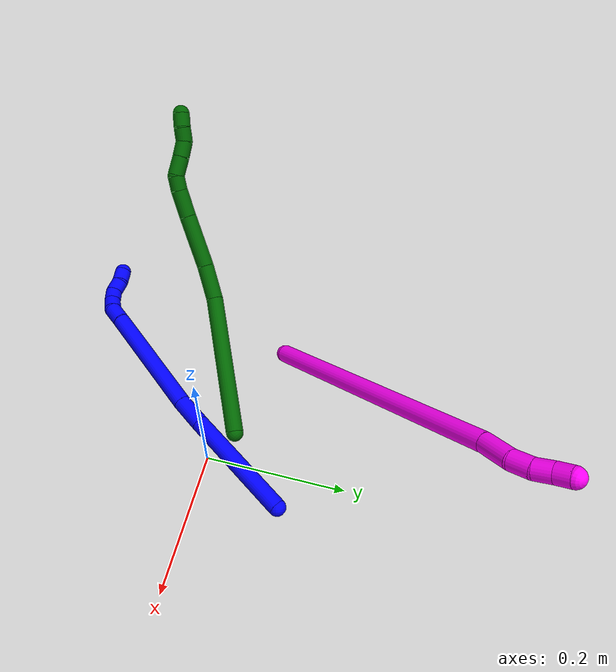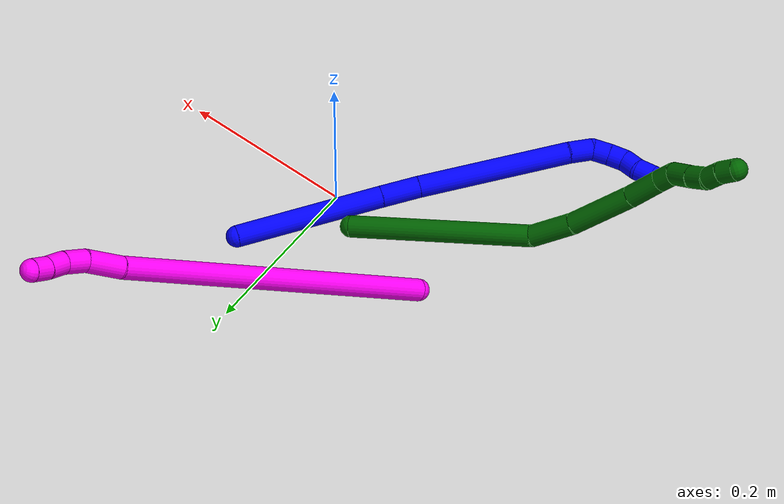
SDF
<sdf version="1.7">
 <world name="default">
  <model name="photoneo_s_sensor">
   <static>1</static>
   <pose>0 0 2 1.57079 1.57079 3.14159</pose>
   <link name="link">
    <inertial><mass>0.1</mass></inertial>
    <sensor name="sensor" type="depth">
     <update_rate>30</update_rate>
     <camera>
      <horizontal_fov>1.22</horizontal_fov>
      <image><width>1920</width><height>1200</height><format>B8G8R8</format></image>
      <clip><near>0.1</near><far>4</far></clip>
      <depth_camera><output>points</output></depth_camera>
     </camera>
     <plugin name="camera_plugin" filename="libgazebo_ros_depth_camera.so">
      <baseline>0.2</baseline>
      <alwaysOn>1</alwaysOn>
      <updateRate>0.0</updateRate>
      <cameraName>camera_ir</cameraName>
      <imageTopicName>/camera/color/image_raw</imageTopicName>
      <cameraInfoTopicName>/camera/color/camera_info</cameraInfoTopicName>
      <depthImageTopicName>/camera/depth/image_raw</depthImageTopicName>
      <depthImageCameraInfoTopicName>/camera/depth/camera_info</depthImageCameraInfoTopicName>
      <pointCloudTopicName>/camera/depth/points</pointCloudTopicName>
      <frameName>fr_optical</frameName>
      <pointCloudCutoff>0.1</pointCloudCutoff>
      <pointCloudCutoffMax>2.0</pointCloudCutoffMax>
      <distortionK1>0</distortionK1>
      <distortionK2>0</distortionK2>
      <distortionK3>0</distortionK3>
      <distortionT1>0</distortionT1>
      <distortionT2>0</distortionT2>
      <CxPrime>0</CxPrime>
      <Cx>0</Cx>
      <Cy>0</Cy>
      <focalLength>0</focalLength>
      <hackBaseline>0</hackBaseline>
     </plugin>
    </sensor>
   </link>
  </model>
  <model name="bin">
   <static>1</static>
   <link name="bottom">
    <collision name="collision-bottom">
     <pose>0 0 -0.01 0 -0 0</pose>
     <geometry><box><size>0.8 0.6 0.02</size></box></geometry>
     <surface>
      <friction><ode><mu>100</mu><mu2>100</mu2></ode></friction>
      <contact><collide_bitmask>65535</collide_bitmask></contact>
     </surface>
    </collision>
   </link>
   <link name="west_wall">
    <collision name="collision-west_wall">
     <pose>-0.41 0 0.1 0 -0 0</pose>
     <geometry><box><size>0.02 0.6 0.2</size></box></geometry>
     <surface>
      <friction><ode><mu>100</mu><mu2>100</mu2></ode></friction>
      <contact><collide_bitmask>65535</collide_bitmask></contact>
     </surface>
    </collision>
   </link>
   <link name="east_wall">
    <collision name="collision-east_wall">
     <pose>0.41 0 0.1 0 -0 0</pose>
     <geometry><box><size>0.02 0.6 0.2</size></box></geometry>
     <surface>
      <friction><ode><mu>100</mu><mu2>100</mu2></ode></friction>
      <contact><collide_bitmask>65535</collide_bitmask></contact>
     </surface>
    </collision>
   </link>
   <link name="south_wall">
    <collision name="collision-south_wall">
     <pose>0 -0.31 0.1 0 -0 0</pose>
     <geometry><box><size>0.8 0.02 0.2</size></box></geometry>
     <surface>
      <friction><ode><mu>100</mu><mu2>100</mu2></ode></friction>
      <contact><collide_bitmask>65535</collide_bitmask></contact>
     </surface>
    </collision>
   </link>
   <link name="north_wall">
    <collision name="collision-north_wall">
     <pose>0 0.31 0.1 0 -0 0</pose>
     <geometry><box><size>0.8 0.02 0.2</size></box></geometry>
     <surface>
      <friction><ode><mu>100</mu><mu2>100</mu2></ode></friction>
      <contact><collide_bitmask>65535</collide_bitmask></contact>
     </surface>
    </collision>
   </link>
  </model>
  <model name="1">
   <static>0</static>
   <link name="1">
    <collision name="collision-cylinder-e_1_1_4">
     <pose>-0.033363 -0.058896 0.0524 0.843702 -0.400361 -0.181618</pose>
     <geometry><cylinder><radius>0.0125</radius><length>0.171202</length></cylinder></geometry>
     <surface>
      <friction><ode><mu>1.16</mu><mu2>1.16</mu2><slip1>0</slip1><slip2>0</slip2></ode></friction>
      <contact><ode><kp>1e+06</kp><kd>1</kd><max_vel>0</max_vel><min_depth>0.001</min_depth></ode></contact>
     </surface>
    </collision>
    <visual name="visual-cylinder-e_1_1_4">
     <pose>-0.033363 -0.058896 0.0524 0.843702 -0.400361 -0.181618</pose>
     <geometry><cylinder><radius>0.0125</radius><length>0.171202</length></cylinder></geometry>
     <material><ambient>0 0 1 1</ambient></material>
    </visual>
    <collision name="collision-cylinder-e_2_4_5">
     <pose>-0.075448 -0.132735 0.119032 0.809714 -0.399863 -0.173239</pose>
     <geometry><cylinder><radius>0.0125</radius><length>0.044808</length></cylinder></geometry>
     <surface>
      <friction><ode><mu>1.16</mu><mu2>1.16</mu2><slip1>0</slip1><slip2>0</slip2></ode></friction>
      <contact><ode><kp>1e+06</kp><kd>1</kd><max_vel>0</max_vel><min_depth>0.001</min_depth></ode></contact>
     </surface>
    </collision>
    <visual name="visual-cylinder-e_2_4_5">
     <pose>-0.075448 -0.132735 0.119032 0.809714 -0.399863 -0.173239</pose>
     <geometry><cylinder><radius>0.0125</radius><length>0.044808</length></cylinder></geometry>
     <material><ambient>0 0 1 1</ambient></material>
    </visual>
    <collision name="collision-cylinder-e_3_5_6">
     <pose>-0.118983 -0.202096 0.193052 0.738432 -0.40662 -0.159214</pose>
     <geometry><cylinder><radius>0.0125</radius><length>0.176043</length></cylinder></geometry>
     <surface>
      <friction><ode><mu>1.16</mu><mu2>1.16</mu2><slip1>0</slip1><slip2>0</slip2></ode></friction>
      <contact><ode><kp>1e+06</kp><kd>1</kd><max_vel>0</max_vel><min_depth>0.001</min_depth></ode></contact>
     </surface>
    </collision>
    <visual name="visual-cylinder-e_3_5_6">
     <pose>-0.118983 -0.202096 0.193052 0.738432 -0.40662 -0.159214</pose>
     <geometry><cylinder><radius>0.0125</radius><length>0.176043</length></cylinder></geometry>
     <material><ambient>0 0 1 1</ambient></material>
    </visual>
    <collision name="collision-cylinder-e_4_6_7">
     <pose>-0.160562 -0.265193 0.261255 0.800693 -0.510248 -0.219858</pose>
     <geometry><cylinder><radius>0.0125</radius><length>0.027708</length></cylinder></geometry>
     <surface>
      <friction><ode><mu>1.16</mu><mu2>1.16</mu2><slip1>0</slip1><slip2>0</slip2></ode></friction>
      <contact><ode><kp>1e+06</kp><kd>1</kd><max_vel>0</max_vel><min_depth>0.001</min_depth></ode></contact>
     </surface>
    </collision>
    <visual name="visual-cylinder-e_4_6_7">
     <pose>-0.160562 -0.265193 0.261255 0.800693 -0.510248 -0.219858</pose>
     <geometry><cylinder><radius>0.0125</radius><length>0.027708</length></cylinder></geometry>
     <material><ambient>0 0 1 1</ambient></material>
    </visual>
    <collision name="collision-cylinder-e_5_7_8">
     <pose>-0.174936 -0.276407 0.275809 0.391871 -0.853148 -0.179926</pose>
     <geometry><cylinder><radius>0.0125</radius><length>0.020198</length></cylinder></geometry>
     <surface>
      <friction><ode><mu>1.16</mu><mu2>1.16</mu2><slip1>0</slip1><slip2>0</slip2></ode></friction>
      <contact><ode><kp>1e+06</kp><kd>1</kd><max_vel>0</max_vel><min_depth>0.001</min_depth></ode></contact>
     </surface>
    </collision>
    <visual name="visual-cylinder-e_5_7_8">
     <pose>-0.174936 -0.276407 0.275809 0.391871 -0.853148 -0.179926</pose>
     <geometry><cylinder><radius>0.0125</radius><length>0.020198</length></cylinder></geometry>
     <material><ambient>0 0 1 1</ambient></material>
    </visual>
    <collision name="collision-cylinder-e_6_8_9">
     <pose>-0.18952 -0.279675 0.289093 0.101917 -0.770704 -0.041371</pose>
     <geometry><cylinder><radius>0.0125</radius><length>0.020026</length></cylinder></geometry>
     <surface>
      <friction><ode><mu>1.16</mu><mu2>1.16</mu2><slip1>0</slip1><slip2>0</slip2></ode></friction>
      <contact><ode><kp>1e+06</kp><kd>1</kd><max_vel>0</max_vel><min_depth>0.001</min_depth></ode></contact>
     </surface>
    </collision>
    <visual name="visual-cylinder-e_6_8_9">
     <pose>-0.18952 -0.279675 0.289093 0.101917 -0.770704 -0.041371</pose>
     <geometry><cylinder><radius>0.0125</radius><length>0.020026</length></cylinder></geometry>
     <material><ambient>0 0 1 1</ambient></material>
    </visual>
    <collision name="collision-cylinder-e_7_9_10">
     <pose>-0.201547 -0.276519 0.303953 -0.466682 -0.529281 0.128638</pose>
     <geometry><cylinder><radius>0.0125</radius><length>0.020013</length></cylinder></geometry>
     <surface>
      <friction><ode><mu>1.16</mu><mu2>1.16</mu2><slip1>0</slip1><slip2>0</slip2></ode></friction>
      <contact><ode><kp>1e+06</kp><kd>1</kd><max_vel>0</max_vel><min_depth>0.001</min_depth></ode></contact>
     </surface>
    </collision>
    <visual name="visual-cylinder-e_7_9_10">
     <pose>-0.201547 -0.276519 0.303953 -0.466682 -0.529281 0.128638</pose>
     <geometry><cylinder><radius>0.0125</radius><length>0.020013</length></cylinder></geometry>
     <material><ambient>0 0 1 1</ambient></material>
    </visual>
    <collision name="collision-cylinder-e_8_10_2">
     <pose>-0.212789 -0.271727 0.319471 -0.11559 -0.667277 0.040102</pose>
     <geometry><cylinder><radius>0.0125</radius><length>0.020003</length></cylinder></geometry>
     <surface>
      <friction><ode><mu>1.16</mu><mu2>1.16</mu2><slip1>0</slip1><slip2>0</slip2></ode></friction>
      <contact><ode><kp>1e+06</kp><kd>1</kd><max_vel>0</max_vel><min_depth>0.001</min_depth></ode></contact>
     </surface>
    </collision>
    <visual name="visual-cylinder-e_8_10_2">
     <pose>-0.212789 -0.271727 0.319471 -0.11559 -0.667277 0.040102</pose>
     <geometry><cylinder><radius>0.0125</radius><length>0.020003</length></cylinder></geometry>
     <material><ambient>0 0 1 1</ambient></material>
    </visual>
    <collision name="collision-sphere-2">
     <pose>-0.218978 -0.270821 0.327274 0 -0 0</pose>
     <geometry><sphere><radius>0.0125</radius></sphere></geometry>
     <surface>
      <friction><ode><mu>1.16</mu><mu2>1.16</mu2><slip1>0</slip1><slip2>0</slip2></ode></friction>
      <contact><ode><kp>1e+06</kp><kd>1</kd><max_vel>0</max_vel><min_depth>0.001</min_depth></ode></contact>
     </surface>
    </collision>
    <visual name="visual-sphere-2">
     <pose>-0.218978 -0.270821 0.327274 0 -0 0</pose>
     <geometry><sphere><radius>0.0125</radius></sphere></geometry>
     <material><ambient>0 0 1 1</ambient></material>
    </visual>
    <collision name="collision-sphere-10">
     <pose>-0.2066 -0.272633 0.311667 0 -0 0</pose>
     <geometry><sphere><radius>0.0125</radius></sphere></geometry>
     <surface>
      <friction><ode><mu>1.16</mu><mu2>1.16</mu2><slip1>0</slip1><slip2>0</slip2></ode></friction>
      <contact><ode><kp>1e+06</kp><kd>1</kd><max_vel>0</max_vel><min_depth>0.001</min_depth></ode></contact>
     </surface>
    </collision>
    <visual name="visual-sphere-10">
     <pose>-0.2066 -0.272633 0.311667 0 -0 0</pose>
     <geometry><sphere><radius>0.0125</radius></sphere></geometry>
     <material><ambient>0 0 1 1</ambient></material>
    </visual>
    <collision name="collision-sphere-9">
     <pose>-0.196495 -0.280405 0.29624 0 -0 0</pose>
     <geometry><sphere><radius>0.0125</radius></sphere></geometry>
     <surface>
      <friction><ode><mu>1.16</mu><mu2>1.16</mu2><slip1>0</slip1><slip2>0</slip2></ode></friction>
      <contact><ode><kp>1e+06</kp><kd>1</kd><max_vel>0</max_vel><min_depth>0.001</min_depth></ode></contact>
     </surface>
    </collision>
    <visual name="visual-sphere-9">
     <pose>-0.196495 -0.280405 0.29624 0 -0 0</pose>
     <geometry><sphere><radius>0.0125</radius></sphere></geometry>
     <material><ambient>0 0 1 1</ambient></material>
    </visual>
    <collision name="collision-sphere-4">
     <pose>-0.066726 -0.117792 0.104799 0 -0 0</pose>
     <geometry><sphere><radius>0.0125</radius></sphere></geometry>
     <surface>
      <friction><ode><mu>1.16</mu><mu2>1.16</mu2><slip1>0</slip1><slip2>0</slip2></ode></friction>
      <contact><ode><kp>1e+06</kp><kd>1</kd><max_vel>0</max_vel><min_depth>0.001</min_depth></ode></contact>
     </surface>
    </collision>
    <visual name="visual-sphere-4">
     <pose>-0.066726 -0.117792 0.104799 0 -0 0</pose>
     <geometry><sphere><radius>0.0125</radius></sphere></geometry>
     <material><ambient>0 0 1 1</ambient></material>
    </visual>
    <collision name="collision-sphere-1">
     <geometry><sphere><radius>0.0125</radius></sphere></geometry>
     <surface>
      <friction><ode><mu>1.16</mu><mu2>1.16</mu2><slip1>0</slip1><slip2>0</slip2></ode></friction>
      <contact><ode><kp>1e+06</kp><kd>1</kd><max_vel>0</max_vel><min_depth>0.001</min_depth></ode></contact>
     </surface>
    </collision>
    <visual name="visual-sphere-1">
     <geometry><sphere><radius>0.0125</radius></sphere></geometry>
     <material><ambient>0 0 1 1</ambient></material>
    </visual>
    <collision name="collision-sphere-8">
     <pose>-0.182544 -0.278944 0.281947 0 -0 0</pose>
     <geometry><sphere><radius>0.0125</radius></sphere></geometry>
     <surface>
      <friction><ode><mu>1.16</mu><mu2>1.16</mu2><slip1>0</slip1><slip2>0</slip2></ode></friction>
      <contact><ode><kp>1e+06</kp><kd>1</kd><max_vel>0</max_vel><min_depth>0.001</min_depth></ode></contact>
     </surface>
    </collision>
    <visual name="visual-sphere-8">
     <pose>-0.182544 -0.278944 0.281947 0 -0 0</pose>
     <geometry><sphere><radius>0.0125</radius></sphere></geometry>
     <material><ambient>0 0 1 1</ambient></material>
    </visual>
    <collision name="collision-sphere-5">
     <pose>-0.08417 -0.147678 0.133266 0 -0 0</pose>
     <geometry><sphere><radius>0.0125</radius></sphere></geometry>
     <surface>
      <friction><ode><mu>1.16</mu><mu2>1.16</mu2><slip1>0</slip1><slip2>0</slip2></ode></friction>
      <contact><ode><kp>1e+06</kp><kd>1</kd><max_vel>0</max_vel><min_depth>0.001</min_depth></ode></contact>
     </surface>
    </collision>
    <visual name="visual-sphere-5">
     <pose>-0.08417 -0.147678 0.133266 0 -0 0</pose>
     <geometry><sphere><radius>0.0125</radius></sphere></geometry>
     <material><ambient>0 0 1 1</ambient></material>
    </visual>
    <collision name="collision-sphere-6">
     <pose>-0.153796 -0.256515 0.252838 0 -0 0</pose>
     <geometry><sphere><radius>0.0125</radius></sphere></geometry>
     <surface>
      <friction><ode><mu>1.16</mu><mu2>1.16</mu2><slip1>0</slip1><slip2>0</slip2></ode></friction>
      <contact><ode><kp>1e+06</kp><kd>1</kd><max_vel>0</max_vel><min_depth>0.001</min_depth></ode></contact>
     </surface>
    </collision>
    <visual name="visual-sphere-6">
     <pose>-0.153796 -0.256515 0.252838 0 -0 0</pose>
     <geometry><sphere><radius>0.0125</radius></sphere></geometry>
     <material><ambient>0 0 1 1</ambient></material>
    </visual>
    <collision name="collision-sphere-7">
     <pose>-0.167328 -0.273871 0.269672 0 -0 0</pose>
     <geometry><sphere><radius>0.0125</radius></sphere></geometry>
     <surface>
      <friction><ode><mu>1.16</mu><mu2>1.16</mu2><slip1>0</slip1><slip2>0</slip2></ode></friction>
      <contact><ode><kp>1e+06</kp><kd>1</kd><max_vel>0</max_vel><min_depth>0.001</min_depth></ode></contact>
     </surface>
    </collision>
    <visual name="visual-sphere-7">
     <pose>-0.167328 -0.273871 0.269672 0 -0 0</pose>
     <geometry><sphere><radius>0.0125</radius></sphere></geometry>
     <material><ambient>0 0 1 1</ambient></material>
    </visual>
    <inertial>
     <pose>-0.100212 -0.162218 0.158724 0 -0 0</pose>
     <mass>0.5</mass>
     <inertia>
      <ixx>0.000662</ixx>
      <ixy>0</ixy>
      <ixz>0</ixz>
      <iyy>0.00051</iyy>
      <iyz>0</iyz>
      <izz>0.000968</izz>
     </inertia>
    </inertial>
   </link>
   <pose>0.050886 0.116939 0.011491 0.2063 -0.865923 0.051608</pose>
  </model>
  <model name="6">
   <static>0</static>
   <link name="6">
    <collision name="collision-cylinder-e_1_1_4">
     <pose>-0.042106 -0.030864 0.092334 0.322592 -0.408204 -0.067331</pose>
     <geometry><cylinder><radius>0.0125</radius><length>0.212142</length></cylinder></geometry>
     <surface>
      <friction><ode><mu>1.16</mu><mu2>1.16</mu2><slip1>0</slip1><slip2>0</slip2></ode></friction>
      <contact><ode><kp>1e+06</kp><kd>1</kd><max_vel>0</max_vel><min_depth>0.001</min_depth></ode></contact>
     </surface>
    </collision>
    <visual name="visual-cylinder-e_1_1_4">
     <pose>-0.042106 -0.030864 0.092334 0.322592 -0.408204 -0.067331</pose>
     <geometry><cylinder><radius>0.0125</radius><length>0.212142</length></cylinder></geometry>
     <material><ambient>0 0.392157 0.003922 1</ambient></material>
    </visual>
    <collision name="collision-cylinder-e_2_4_5">
     <pose>-0.097926 -0.060178 0.207192 -0.068711 -0.545834 0.019239</pose>
     <geometry><cylinder><radius>0.0125</radius><length>0.052832</length></cylinder></geometry>
     <surface>
      <friction><ode><mu>1.16</mu><mu2>1.16</mu2><slip1>0</slip1><slip2>0</slip2></ode></friction>
      <contact><ode><kp>1e+06</kp><kd>1</kd><max_vel>0</max_vel><min_depth>0.001</min_depth></ode></contact>
     </surface>
    </collision>
    <visual name="visual-cylinder-e_2_4_5">
     <pose>-0.097926 -0.060178 0.207192 -0.068711 -0.545834 0.019239</pose>
     <geometry><cylinder><radius>0.0125</radius><length>0.052832</length></cylinder></geometry>
     <material><ambient>0 0.392157 0.003922 1</ambient></material>
    </visual>
    <collision name="collision-cylinder-e_3_5_6">
     <pose>-0.132328 -0.051226 0.262527 -0.221887 -0.551456 0.063017</pose>
     <geometry><cylinder><radius>0.0125</radius><length>0.078978</length></cylinder></geometry>
     <surface>
      <friction><ode><mu>1.16</mu><mu2>1.16</mu2><slip1>0</slip1><slip2>0</slip2></ode></friction>
      <contact><ode><kp>1e+06</kp><kd>1</kd><max_vel>0</max_vel><min_depth>0.001</min_depth></ode></contact>
     </surface>
    </collision>
    <visual name="visual-cylinder-e_3_5_6">
     <pose>-0.132328 -0.051226 0.262527 -0.221887 -0.551456 0.063017</pose>
     <geometry><cylinder><radius>0.0125</radius><length>0.078978</length></cylinder></geometry>
     <material><ambient>0 0.392157 0.003922 1</ambient></material>
    </visual>
    <collision name="collision-cylinder-e_4_6_7">
     <pose>-0.164824 -0.038778 0.311438 -0.303739 -0.610534 0.096381</pose>
     <geometry><cylinder><radius>0.0125</radius><length>0.041186</length></cylinder></geometry>
     <surface>
      <friction><ode><mu>1.16</mu><mu2>1.16</mu2><slip1>0</slip1><slip2>0</slip2></ode></friction>
      <contact><ode><kp>1e+06</kp><kd>1</kd><max_vel>0</max_vel><min_depth>0.001</min_depth></ode></contact>
     </surface>
    </collision>
    <visual name="visual-cylinder-e_4_6_7">
     <pose>-0.164824 -0.038778 0.311438 -0.303739 -0.610534 0.096381</pose>
     <geometry><cylinder><radius>0.0125</radius><length>0.041186</length></cylinder></geometry>
     <material><ambient>0 0.392157 0.003922 1</ambient></material>
    </visual>
    <collision name="collision-cylinder-e_5_7_8">
     <pose>-0.18383 -0.031303 0.335277 -0.304024 -0.725996 0.116244</pose>
     <geometry><cylinder><radius>0.0125</radius><length>0.021692</length></cylinder></geometry>
     <surface>
      <friction><ode><mu>1.16</mu><mu2>1.16</mu2><slip1>0</slip1><slip2>0</slip2></ode></friction>
      <contact><ode><kp>1e+06</kp><kd>1</kd><max_vel>0</max_vel><min_depth>0.001</min_depth></ode></contact>
     </surface>
    </collision>
    <visual name="visual-cylinder-e_5_7_8">
     <pose>-0.18383 -0.031303 0.335277 -0.304024 -0.725996 0.116244</pose>
     <geometry><cylinder><radius>0.0125</radius><length>0.021692</length></cylinder></geometry>
     <material><ambient>0 0.392157 0.003922 1</ambient></material>
    </visual>
    <collision name="collision-cylinder-e_6_8_9">
     <pose>-0.202915 -0.031856 0.35032 0.387534 -0.984785 -0.209768</pose>
     <geometry><cylinder><radius>0.0125</radius><length>0.028528</length></cylinder></geometry>
     <surface>
      <friction><ode><mu>1.16</mu><mu2>1.16</mu2><slip1>0</slip1><slip2>0</slip2></ode></friction>
      <contact><ode><kp>1e+06</kp><kd>1</kd><max_vel>0</max_vel><min_depth>0.001</min_depth></ode></contact>
     </surface>
    </collision>
    <visual name="visual-cylinder-e_6_8_9">
     <pose>-0.202915 -0.031856 0.35032 0.387534 -0.984785 -0.209768</pose>
     <geometry><cylinder><radius>0.0125</radius><length>0.028528</length></cylinder></geometry>
     <material><ambient>0 0.392157 0.003922 1</ambient></material>
    </visual>
    <collision name="collision-cylinder-e_7_9_10">
     <pose>-0.224579 -0.036923 0.364113 0.311071 -0.962125 -0.163325</pose>
     <geometry><cylinder><radius>0.0125</radius><length>0.023843</length></cylinder></geometry>
     <surface>
      <friction><ode><mu>1.16</mu><mu2>1.16</mu2><slip1>0</slip1><slip2>0</slip2></ode></friction>
      <contact><ode><kp>1e+06</kp><kd>1</kd><max_vel>0</max_vel><min_depth>0.001</min_depth></ode></contact>
     </surface>
    </collision>
    <visual name="visual-cylinder-e_7_9_10">
     <pose>-0.224579 -0.036923 0.364113 0.311071 -0.962125 -0.163325</pose>
     <geometry><cylinder><radius>0.0125</radius><length>0.023843</length></cylinder></geometry>
     <material><ambient>0 0.392157 0.003922 1</ambient></material>
    </visual>
    <collision name="collision-cylinder-e_8_10_11">
     <pose>-0.241742 -0.037074 0.37757 -0.271021 -0.795647 0.114468</pose>
     <geometry><cylinder><radius>0.0125</radius><length>0.020668</length></cylinder></geometry>
     <surface>
      <friction><ode><mu>1.16</mu><mu2>1.16</mu2><slip1>0</slip1><slip2>0</slip2></ode></friction>
      <contact><ode><kp>1e+06</kp><kd>1</kd><max_vel>0</max_vel><min_depth>0.001</min_depth></ode></contact>
     </surface>
    </collision>
    <visual name="visual-cylinder-e_8_10_11">
     <pose>-0.241742 -0.037074 0.37757 -0.271021 -0.795647 0.114468</pose>
     <geometry><cylinder><radius>0.0125</radius><length>0.020668</length></cylinder></geometry>
     <material><ambient>0 0.392157 0.003922 1</ambient></material>
    </visual>
    <collision name="collision-cylinder-e_9_11_2">
     <pose>-0.256026 -0.035177 0.391864 0.005387 -0.75561 -0.002138</pose>
     <geometry><cylinder><radius>0.0125</radius><length>0.020132</length></cylinder></geometry>
     <surface>
      <friction><ode><mu>1.16</mu><mu2>1.16</mu2><slip1>0</slip1><slip2>0</slip2></ode></friction>
      <contact><ode><kp>1e+06</kp><kd>1</kd><max_vel>0</max_vel><min_depth>0.001</min_depth></ode></contact>
     </surface>
    </collision>
    <visual name="visual-cylinder-e_9_11_2">
     <pose>-0.256026 -0.035177 0.391864 0.005387 -0.75561 -0.002138</pose>
     <geometry><cylinder><radius>0.0125</radius><length>0.020132</length></cylinder></geometry>
     <material><ambient>0 0.392157 0.003922 1</ambient></material>
    </visual>
    <collision name="collision-sphere-2">
     <pose>-0.262928 -0.035217 0.39919 0 -0 0</pose>
     <geometry><sphere><radius>0.0125</radius></sphere></geometry>
     <surface>
      <friction><ode><mu>1.16</mu><mu2>1.16</mu2><slip1>0</slip1><slip2>0</slip2></ode></friction>
      <contact><ode><kp>1e+06</kp><kd>1</kd><max_vel>0</max_vel><min_depth>0.001</min_depth></ode></contact>
     </surface>
    </collision>
    <visual name="visual-sphere-2">
     <pose>-0.262928 -0.035217 0.39919 0 -0 0</pose>
     <geometry><sphere><radius>0.0125</radius></sphere></geometry>
     <material><ambient>0 0.392157 0.003922 1</ambient></material>
    </visual>
    <collision name="collision-sphere-11">
     <pose>-0.249123 -0.035138 0.384538 0 -0 0</pose>
     <geometry><sphere><radius>0.0125</radius></sphere></geometry>
     <surface>
      <friction><ode><mu>1.16</mu><mu2>1.16</mu2><slip1>0</slip1><slip2>0</slip2></ode></friction>
      <contact><ode><kp>1e+06</kp><kd>1</kd><max_vel>0</max_vel><min_depth>0.001</min_depth></ode></contact>
     </surface>
    </collision>
    <visual name="visual-sphere-11">
     <pose>-0.249123 -0.035138 0.384538 0 -0 0</pose>
     <geometry><sphere><radius>0.0125</radius></sphere></geometry>
     <material><ambient>0 0.392157 0.003922 1</ambient></material>
    </visual>
    <collision name="collision-sphere-10">
     <pose>-0.23436 -0.03901 0.370602 0 -0 0</pose>
     <geometry><sphere><radius>0.0125</radius></sphere></geometry>
     <surface>
      <friction><ode><mu>1.16</mu><mu2>1.16</mu2><slip1>0</slip1><slip2>0</slip2></ode></friction>
      <contact><ode><kp>1e+06</kp><kd>1</kd><max_vel>0</max_vel><min_depth>0.001</min_depth></ode></contact>
     </surface>
    </collision>
    <visual name="visual-sphere-10">
     <pose>-0.23436 -0.03901 0.370602 0 -0 0</pose>
     <geometry><sphere><radius>0.0125</radius></sphere></geometry>
     <material><ambient>0 0.392157 0.003922 1</ambient></material>
    </visual>
    <collision name="collision-sphere-9">
     <pose>-0.214799 -0.034837 0.357623 0 -0 0</pose>
     <geometry><sphere><radius>0.0125</radius></sphere></geometry>
     <surface>
      <friction><ode><mu>1.16</mu><mu2>1.16</mu2><slip1>0</slip1><slip2>0</slip2></ode></friction>
      <contact><ode><kp>1e+06</kp><kd>1</kd><max_vel>0</max_vel><min_depth>0.001</min_depth></ode></contact>
     </surface>
    </collision>
    <visual name="visual-sphere-9">
     <pose>-0.214799 -0.034837 0.357623 0 -0 0</pose>
     <geometry><sphere><radius>0.0125</radius></sphere></geometry>
     <material><ambient>0 0.392157 0.003922 1</ambient></material>
    </visual>
    <collision name="collision-sphere-4">
     <pose>-0.084212 -0.061728 0.184667 0 -0 0</pose>
     <geometry><sphere><radius>0.0125</radius></sphere></geometry>
     <surface>
      <friction><ode><mu>1.16</mu><mu2>1.16</mu2><slip1>0</slip1><slip2>0</slip2></ode></friction>
      <contact><ode><kp>1e+06</kp><kd>1</kd><max_vel>0</max_vel><min_depth>0.001</min_depth></ode></contact>
     </surface>
    </collision>
    <visual name="visual-sphere-4">
     <pose>-0.084212 -0.061728 0.184667 0 -0 0</pose>
     <geometry><sphere><radius>0.0125</radius></sphere></geometry>
     <material><ambient>0 0.392157 0.003922 1</ambient></material>
    </visual>
    <collision name="collision-sphere-1">
     <geometry><sphere><radius>0.0125</radius></sphere></geometry>
     <surface>
      <friction><ode><mu>1.16</mu><mu2>1.16</mu2><slip1>0</slip1><slip2>0</slip2></ode></friction>
      <contact><ode><kp>1e+06</kp><kd>1</kd><max_vel>0</max_vel><min_depth>0.001</min_depth></ode></contact>
     </surface>
    </collision>
    <visual name="visual-sphere-1">
     <geometry><sphere><radius>0.0125</radius></sphere></geometry>
     <material><ambient>0 0.392157 0.003922 1</ambient></material>
    </visual>
    <collision name="collision-sphere-8">
     <pose>-0.191031 -0.028875 0.343016 0 -0 0</pose>
     <geometry><sphere><radius>0.0125</radius></sphere></geometry>
     <surface>
      <friction><ode><mu>1.16</mu><mu2>1.16</mu2><slip1>0</slip1><slip2>0</slip2></ode></friction>
      <contact><ode><kp>1e+06</kp><kd>1</kd><max_vel>0</max_vel><min_depth>0.001</min_depth></ode></contact>
     </surface>
    </collision>
    <visual name="visual-sphere-8">
     <pose>-0.191031 -0.028875 0.343016 0 -0 0</pose>
     <geometry><sphere><radius>0.0125</radius></sphere></geometry>
     <material><ambient>0 0.392157 0.003922 1</ambient></material>
    </visual>
    <collision name="collision-sphere-5">
     <pose>-0.111639 -0.058628 0.229716 0 -0 0</pose>
     <geometry><sphere><radius>0.0125</radius></sphere></geometry>
     <surface>
      <friction><ode><mu>1.16</mu><mu2>1.16</mu2><slip1>0</slip1><slip2>0</slip2></ode></friction>
      <contact><ode><kp>1e+06</kp><kd>1</kd><max_vel>0</max_vel><min_depth>0.001</min_depth></ode></contact>
     </surface>
    </collision>
    <visual name="visual-sphere-5">
     <pose>-0.111639 -0.058628 0.229716 0 -0 0</pose>
     <geometry><sphere><radius>0.0125</radius></sphere></geometry>
     <material><ambient>0 0.392157 0.003922 1</ambient></material>
    </visual>
    <collision name="collision-sphere-6">
     <pose>-0.153018 -0.043824 0.295337 0 -0 0</pose>
     <geometry><sphere><radius>0.0125</radius></sphere></geometry>
     <surface>
      <friction><ode><mu>1.16</mu><mu2>1.16</mu2><slip1>0</slip1><slip2>0</slip2></ode></friction>
      <contact><ode><kp>1e+06</kp><kd>1</kd><max_vel>0</max_vel><min_depth>0.001</min_depth></ode></contact>
     </surface>
    </collision>
    <visual name="visual-sphere-6">
     <pose>-0.153018 -0.043824 0.295337 0 -0 0</pose>
     <geometry><sphere><radius>0.0125</radius></sphere></geometry>
     <material><ambient>0 0.392157 0.003922 1</ambient></material>
    </visual>
    <collision name="collision-sphere-7">
     <pose>-0.17663 -0.033731 0.327538 0 -0 0</pose>
     <geometry><sphere><radius>0.0125</radius></sphere></geometry>
     <surface>
      <friction><ode><mu>1.16</mu><mu2>1.16</mu2><slip1>0</slip1><slip2>0</slip2></ode></friction>
      <contact><ode><kp>1e+06</kp><kd>1</kd><max_vel>0</max_vel><min_depth>0.001</min_depth></ode></contact>
     </surface>
    </collision>
    <visual name="visual-sphere-7">
     <pose>-0.17663 -0.033731 0.327538 0 -0 0</pose>
     <geometry><sphere><radius>0.0125</radius></sphere></geometry>
     <material><ambient>0 0.392157 0.003922 1</ambient></material>
    </visual>
    <inertial>
     <pose>-0.113254 -0.038625 0.211471 0 -0 0</pose>
     <mass>0.5</mass>
     <inertia>
      <ixx>0.000731</ixx>
      <ixy>0</ixy>
      <ixz>0</ixz>
      <iyy>0.000792</iyy>
      <iyz>0</iyz>
      <izz>0.000616</izz>
     </inertia>
    </inertial>
   </link>
   <pose>-0.042751 0.028191 0.011654 1.36919 0.846094 -0.779005</pose>
  </model>
  <model name="10">
   <static>0</static>
   <link name="10">
    <collision name="collision-cylinder-e_1_1_4">
     <pose>0.000311 0.008753 0.193528 -0.045196 0.001606 -3.6e-05</pose>
     <geometry><cylinder><radius>0.0125</radius><length>0.387452</length></cylinder></geometry>
     <surface>
      <friction><ode><mu>1.16</mu><mu2>1.16</mu2><slip1>0</slip1><slip2>0</slip2></ode></friction>
      <contact><ode><kp>1e+06</kp><kd>1</kd><max_vel>0</max_vel><min_depth>0.001</min_depth></ode></contact>
     </surface>
    </collision>
    <visual name="visual-cylinder-e_1_1_4">
     <pose>0.000311 0.008753 0.193528 -0.045196 0.001606 -3.6e-05</pose>
     <geometry><cylinder><radius>0.0125</radius><length>0.387452</length></cylinder></geometry>
     <material><ambient>1 0 0.964706 1</ambient></material>
    </visual>
    <collision name="collision-cylinder-e_2_4_5">
     <pose>0.002943 0.020473 0.407965 -0.140983 0.109463 -0.007737</pose>
     <geometry><cylinder><radius>0.0125</radius><length>0.04249</length></cylinder></geometry>
     <surface>
      <friction><ode><mu>1.16</mu><mu2>1.16</mu2><slip1>0</slip1><slip2>0</slip2></ode></friction>
      <contact><ode><kp>1e+06</kp><kd>1</kd><max_vel>0</max_vel><min_depth>0.001</min_depth></ode></contact>
     </surface>
    </collision>
    <visual name="visual-cylinder-e_2_4_5">
     <pose>0.002943 0.020473 0.407965 -0.140983 0.109463 -0.007737</pose>
     <geometry><cylinder><radius>0.0125</radius><length>0.04249</length></cylinder></geometry>
     <material><ambient>1 0 0.964706 1</ambient></material>
    </visual>
    <collision name="collision-cylinder-e_3_5_6">
     <pose>0.003378 0.024141 0.442137 -0.052814 -0.141033 0.003731</pose>
     <geometry><cylinder><radius>0.0125</radius><length>0.02683</length></cylinder></geometry>
     <surface>
      <friction><ode><mu>1.16</mu><mu2>1.16</mu2><slip1>0</slip1><slip2>0</slip2></ode></friction>
      <contact><ode><kp>1e+06</kp><kd>1</kd><max_vel>0</max_vel><min_depth>0.001</min_depth></ode></contact>
     </surface>
    </collision>
    <visual name="visual-cylinder-e_3_5_6">
     <pose>0.003378 0.024141 0.442137 -0.052814 -0.141033 0.003731</pose>
     <geometry><cylinder><radius>0.0125</radius><length>0.02683</length></cylinder></geometry>
     <material><ambient>1 0 0.964706 1</ambient></material>
    </visual>
    <collision name="collision-cylinder-e_4_6_7">
     <pose>-0.002057 0.023577 0.466278 0.115786 -0.313463 -0.018317</pose>
     <geometry><cylinder><radius>0.0125</radius><length>0.023026</length></cylinder></geometry>
     <surface>
      <friction><ode><mu>1.16</mu><mu2>1.16</mu2><slip1>0</slip1><slip2>0</slip2></ode></friction>
      <contact><ode><kp>1e+06</kp><kd>1</kd><max_vel>0</max_vel><min_depth>0.001</min_depth></ode></contact>
     </surface>
    </collision>
    <visual name="visual-cylinder-e_4_6_7">
     <pose>-0.002057 0.023577 0.466278 0.115786 -0.313463 -0.018317</pose>
     <geometry><cylinder><radius>0.0125</radius><length>0.023026</length></cylinder></geometry>
     <material><ambient>1 0 0.964706 1</ambient></material>
    </visual>
    <collision name="collision-cylinder-e_5_7_2">
     <pose>-0.007513 0.021466 0.48704 0.085379 -0.189828 -0.008133</pose>
     <geometry><cylinder><radius>0.0125</radius><length>0.020201</length></cylinder></geometry>
     <surface>
      <friction><ode><mu>1.16</mu><mu2>1.16</mu2><slip1>0</slip1><slip2>0</slip2></ode></friction>
      <contact><ode><kp>1e+06</kp><kd>1</kd><max_vel>0</max_vel><min_depth>0.001</min_depth></ode></contact>
     </surface>
    </collision>
    <visual name="visual-cylinder-e_5_7_2">
     <pose>-0.007513 0.021466 0.48704 0.085379 -0.189828 -0.008133</pose>
     <geometry><cylinder><radius>0.0125</radius><length>0.020201</length></cylinder></geometry>
     <material><ambient>1 0 0.964706 1</ambient></material>
    </visual>
    <collision name="collision-sphere-2">
     <pose>-0.009419 0.02062 0.496923 0 -0 0</pose>
     <geometry><sphere><radius>0.0125</radius></sphere></geometry>
     <surface>
      <friction><ode><mu>1.16</mu><mu2>1.16</mu2><slip1>0</slip1><slip2>0</slip2></ode></friction>
      <contact><ode><kp>1e+06</kp><kd>1</kd><max_vel>0</max_vel><min_depth>0.001</min_depth></ode></contact>
     </surface>
    </collision>
    <visual name="visual-sphere-2">
     <pose>-0.009419 0.02062 0.496923 0 -0 0</pose>
     <geometry><sphere><radius>0.0125</radius></sphere></geometry>
     <material><ambient>1 0 0.964706 1</ambient></material>
    </visual>
    <collision name="collision-sphere-7">
     <pose>-0.005607 0.022312 0.477157 0 -0 0</pose>
     <geometry><sphere><radius>0.0125</radius></sphere></geometry>
     <surface>
      <friction><ode><mu>1.16</mu><mu2>1.16</mu2><slip1>0</slip1><slip2>0</slip2></ode></friction>
      <contact><ode><kp>1e+06</kp><kd>1</kd><max_vel>0</max_vel><min_depth>0.001</min_depth></ode></contact>
     </surface>
    </collision>
    <visual name="visual-sphere-7">
     <pose>-0.005607 0.022312 0.477157 0 -0 0</pose>
     <geometry><sphere><radius>0.0125</radius></sphere></geometry>
     <material><ambient>1 0 0.964706 1</ambient></material>
    </visual>
    <collision name="collision-sphere-6">
     <pose>0.001493 0.024842 0.4554 0 -0 0</pose>
     <geometry><sphere><radius>0.0125</radius></sphere></geometry>
     <surface>
      <friction><ode><mu>1.16</mu><mu2>1.16</mu2><slip1>0</slip1><slip2>0</slip2></ode></friction>
      <contact><ode><kp>1e+06</kp><kd>1</kd><max_vel>0</max_vel><min_depth>0.001</min_depth></ode></contact>
     </surface>
    </collision>
    <visual name="visual-sphere-6">
     <pose>0.001493 0.024842 0.4554 0 -0 0</pose>
     <geometry><sphere><radius>0.0125</radius></sphere></geometry>
     <material><ambient>1 0 0.964706 1</ambient></material>
    </visual>
    <collision name="collision-sphere-5">
     <pose>0.005264 0.02344 0.428873 0 -0 0</pose>
     <geometry><sphere><radius>0.0125</radius></sphere></geometry>
     <surface>
      <friction><ode><mu>1.16</mu><mu2>1.16</mu2><slip1>0</slip1><slip2>0</slip2></ode></friction>
      <contact><ode><kp>1e+06</kp><kd>1</kd><max_vel>0</max_vel><min_depth>0.001</min_depth></ode></contact>
     </surface>
    </collision>
    <visual name="visual-sphere-5">
     <pose>0.005264 0.02344 0.428873 0 -0 0</pose>
     <geometry><sphere><radius>0.0125</radius></sphere></geometry>
     <material><ambient>1 0 0.964706 1</ambient></material>
    </visual>
    <collision name="collision-sphere-1">
     <geometry><sphere><radius>0.0125</radius></sphere></geometry>
     <surface>
      <friction><ode><mu>1.16</mu><mu2>1.16</mu2><slip1>0</slip1><slip2>0</slip2></ode></friction>
      <contact><ode><kp>1e+06</kp><kd>1</kd><max_vel>0</max_vel><min_depth>0.001</min_depth></ode></contact>
     </surface>
    </collision>
    <visual name="visual-sphere-1">
     <geometry><sphere><radius>0.0125</radius></sphere></geometry>
     <material><ambient>1 0 0.964706 1</ambient></material>
    </visual>
    <collision name="collision-sphere-4">
     <pose>0.000622 0.017505 0.387056 0 -0 0</pose>
     <geometry><sphere><radius>0.0125</radius></sphere></geometry>
     <surface>
      <friction><ode><mu>1.16</mu><mu2>1.16</mu2><slip1>0</slip1><slip2>0</slip2></ode></friction>
      <contact><ode><kp>1e+06</kp><kd>1</kd><max_vel>0</max_vel><min_depth>0.001</min_depth></ode></contact>
     </surface>
    </collision>
    <visual name="visual-sphere-4">
     <pose>0.000622 0.017505 0.387056 0 -0 0</pose>
     <geometry><sphere><radius>0.0125</radius></sphere></geometry>
     <material><ambient>1 0 0.964706 1</ambient></material>
    </visual>
    <inertial>
     <pose>0.000274 0.011771 0.249511 0 -0 0</pose>
     <mass>0.5</mass>
     <inertia>
      <ixx>0.004875</ixx>
      <ixy>0</ixy>
      <ixz>0</ixz>
      <iyy>0.004873</iyy>
      <iyz>0</iyz>
      <izz>-0.000189</izz>
     </inertia>
    </inertial>
   </link>
   <pose>-0.169774 0.070299 0.04802 -0.873709 -0.527694 -0.950151</pose>
  </model>
 </world>
</sdf>
